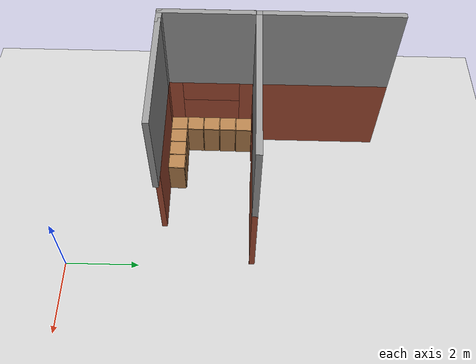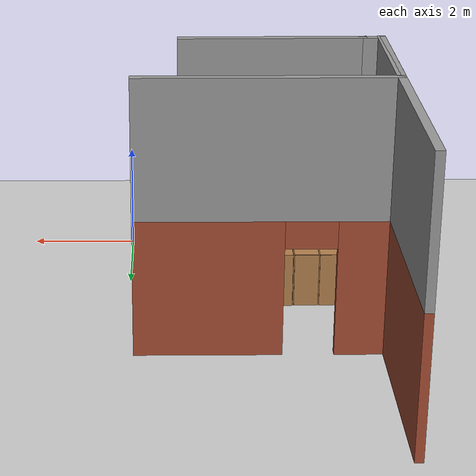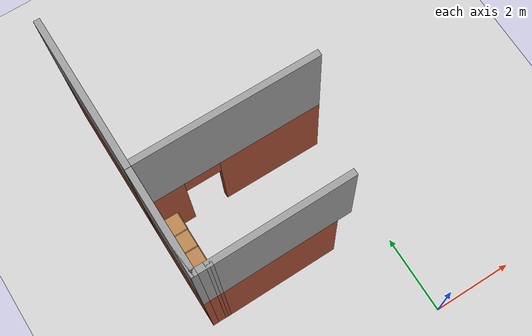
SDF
<sdf version="1.7">
 <world name="default">
  <model name="ground_plane">
   <static>1</static>
   <link name="link">
    <collision name="collision">
     <geometry><plane><normal>0 0 1</normal><size>100 100</size></plane></geometry>
     <surface><friction><ode><mu>100</mu><mu2>50</mu2></ode></friction></surface>
    </collision>
    <visual name="visual">
     <cast_shadows>0</cast_shadows>
     <geometry><plane><normal>0 0 1</normal><size>100 100</size></plane></geometry>
     <material>
      <script><uri>file://media/materials/scripts/gazebo.material</uri><name>Gazebo/Grey</name></script>
     </material>
    </visual>
   </link>
  </model>
  <model name="ZuHause">
   <pose>0.001955 2.012 0 0 -0 0</pose>
   <link name="Wall_100">
    <collision name="Wall_100_Collision">
     <geometry><box><size>3.75 0.15 2.5</size></box></geometry>
     <pose>0 0 1.25 0 -0 0</pose>
    </collision>
    <visual name="Wall_100_Visual">
     <pose>0 0 1.25 0 -0 0</pose>
     <geometry><box><size>3.75 0.15 2.5</size></box></geometry>
     <material>
      <script><uri>file://media/materials/scripts/gazebo.material</uri><name>Gazebo/Bricks</name></script>
      <ambient>1 1 1 1</ambient>
     </material>
     <meta><layer>0</layer></meta>
    </visual>
    <pose>-4.55586 4.88489 0 0 -0 1.5708</pose>
   </link>
   <link name="Wall_108">
    <collision name="Wall_108_Collision">
     <geometry><box><size>2.5 0.15 2.5</size></box></geometry>
     <pose>0 0 1.25 0 -0 0</pose>
    </collision>
    <visual name="Wall_108_Visual">
     <pose>0 0 1.25 0 -0 0</pose>
     <geometry><box><size>2.5 0.15 2.5</size></box></geometry>
     <material>
      <script><uri>file://media/materials/scripts/gazebo.material</uri><name>Gazebo/Grey</name></script>
      <ambient>1 1 1 1</ambient>
     </material>
     <meta><layer>1</layer></meta>
    </visual>
    <pose>-4.55744 1.75088 2.5 0 -0 -1.5708</pose>
   </link>
   <link name="Wall_109">
    <collision name="Wall_109_Collision">
     <geometry><box><size>0.488554 0.15 2.5</size></box></geometry>
     <pose>0 0 1.25 0 -0 0</pose>
    </collision>
    <visual name="Wall_109_Visual">
     <pose>0 0 1.25 0 -0 0</pose>
     <geometry><box><size>0.488554 0.15 2.5</size></box></geometry>
     <material>
      <script><uri>file://media/materials/scripts/gazebo.material</uri><name>Gazebo/Grey</name></script>
      <ambient>1 1 1 1</ambient>
     </material>
     <meta><layer>1</layer></meta>
    </visual>
    <pose>-4.38819 0.578755 2.5 0 -0 -0.016977</pose>
   </link>
   <link name="Wall_111">
    <collision name="Wall_111_Collision">
     <geometry><box><size>3.37854 0.15 2.5</size></box></geometry>
     <pose>0 0 1.25 0 -0 0</pose>
    </collision>
    <visual name="Wall_111_Visual">
     <pose>0 0 1.25 0 -0 0</pose>
     <geometry><box><size>3.37854 0.15 2.5</size></box></geometry>
     <material>
      <script><uri>file://media/materials/scripts/gazebo.material</uri><name>Gazebo/Grey</name></script>
      <ambient>1 1 1 1</ambient>
     </material>
     <meta><layer>1</layer></meta>
    </visual>
    <pose>-2.60474 0.591186 2.5 0 -0 0.009481</pose>
   </link>
   <link name="Wall_131">
    <collision name="Wall_131_Collision">
     <geometry><box><size>2.65326 0.15 2.5</size></box></geometry>
     <pose>0 0 1.25 0 -0 0</pose>
    </collision>
    <visual name="Wall_131_Visual">
     <pose>0 0 1.25 0 -0 0</pose>
     <geometry><box><size>2.65326 0.15 2.5</size></box></geometry>
     <material>
      <script><uri>file://media/materials/scripts/gazebo.material</uri><name>Gazebo/Grey</name></script>
      <ambient>1 1 1 1</ambient>
     </material>
     <meta><layer>1</layer></meta>
    </visual>
    <pose>-4.55665 1.83326 2.5 0 -0 1.57017</pose>
   </link>
   <link name="Wall_132">
    <collision name="Wall_132_Collision">
     <geometry><box><size>4.5 0.15 2.5</size></box></geometry>
     <pose>0 0 1.25 0 -0 0</pose>
    </collision>
    <visual name="Wall_132_Visual">
     <pose>0 0 1.25 0 -0 0</pose>
     <geometry><box><size>4.5 0.15 2.5</size></box></geometry>
     <material>
      <script><uri>file://media/materials/scripts/gazebo.material</uri><name>Gazebo/Grey</name></script>
      <ambient>1 1 1 1</ambient>
     </material>
     <meta><layer>1</layer></meta>
    </visual>
    <pose>-2.38086 3.08489 2.5 0 -0 0</pose>
   </link>
   <link name="Wall_134">
    <collision name="Wall_134_Collision">
     <geometry><box><size>3.75 0.15 2.5</size></box></geometry>
     <pose>0 0 1.25 0 -0 0</pose>
    </collision>
    <visual name="Wall_134_Visual">
     <pose>0 0 1.25 0 -0 0</pose>
     <geometry><box><size>3.75 0.15 2.5</size></box></geometry>
     <material>
      <script><uri>file://media/materials/scripts/gazebo.material</uri><name>Gazebo/Grey</name></script>
      <ambient>1 1 1 1</ambient>
     </material>
     <meta><layer>1</layer></meta>
    </visual>
    <pose>-4.55586 4.88489 2.5 0 -0 1.5708</pose>
   </link>
   <link name="Wall_15">
    <collision name="Wall_15_Collision">
     <geometry><box><size>3.03069 0.15 2.5</size></box></geometry>
     <pose>0 0 1.25 0 -0 0</pose>
    </collision>
    <visual name="Wall_15_Visual">
     <pose>0 0 1.25 0 -0 0</pose>
     <geometry><box><size>3.03069 0.15 2.5</size></box></geometry>
     <material>
      <script><uri>file://media/materials/scripts/gazebo.material</uri><name>Gazebo/Bricks</name></script>
      <ambient>1 1 1 1</ambient>
     </material>
     <meta><layer>0</layer></meta>
    </visual>
    <pose>-2.77867 0.591186 0 0 -0 0.010626</pose>
   </link>
   <link name="Wall_3">
    <collision name="Wall_3_Collision">
     <geometry><box><size>2.5 0.15 2.5</size></box></geometry>
     <pose>0 0 1.25 0 -0 0</pose>
    </collision>
    <visual name="Wall_3_Visual">
     <pose>0 0 1.25 0 -0 0</pose>
     <geometry><box><size>2.5 0.15 2.5</size></box></geometry>
     <material>
      <script><uri>file://media/materials/scripts/gazebo.material</uri><name>Gazebo/Bricks</name></script>
      <ambient>1 1 1 1</ambient>
     </material>
     <meta><layer>0</layer></meta>
    </visual>
    <pose>-4.55744 1.75088 0 0 -0 -1.5708</pose>
   </link>
   <link name="Wall_4">
    <collision name="Wall_4_Collision">
     <geometry><box><size>0.4887 0.15 2.5</size></box></geometry>
     <pose>0 0 1.25 0 -0 0</pose>
    </collision>
    <visual name="Wall_4_Visual">
     <pose>0 0 1.25 0 -0 0</pose>
     <geometry><box><size>0.4887 0.15 2.5</size></box></geometry>
     <material>
      <script><uri>file://media/materials/scripts/gazebo.material</uri><name>Gazebo/Bricks</name></script>
      <ambient>1 1 1 1</ambient>
     </material>
     <meta><layer>0</layer></meta>
    </visual>
    <pose>-4.38819 0.578755 0 0 -0 -0.016977</pose>
   </link>
   <link name="Wall_96">
    <pose>-4.55665 1.83326 0 0 -0 1.57017</pose>
    <visual name="Wall_96_Visual_0">
     <pose>-1.06402 0 1.25 0 -0 0</pose>
     <geometry><box><size>0.525212 0.15 2.5</size></box></geometry>
     <material>
      <script><uri>file://media/materials/scripts/gazebo.material</uri><name>Gazebo/Bricks</name></script>
      <ambient>1 1 1 1</ambient>
     </material>
     <meta><layer>0</layer></meta>
    </visual>
    <collision name="Wall_96_Collision_0">
     <geometry><box><size>0.525212 0.15 2.5</size></box></geometry>
     <pose>-1.06402 0 1.25 0 -0 0</pose>
    </collision>
    <visual name="Wall_96_Visual_1">
     <pose>0.262606 0 0.4 0 -0 0</pose>
     <geometry><box><size>2.12805 0.15 0.8</size></box></geometry>
     <material>
      <script><uri>file://media/materials/scripts/gazebo.material</uri><name>Gazebo/Bricks</name></script>
      <ambient>1 1 1 1</ambient>
     </material>
     <meta><layer>0</layer></meta>
    </visual>
    <collision name="Wall_96_Collision_1">
     <geometry><box><size>2.12805 0.15 0.8</size></box></geometry>
     <pose>0.262606 0 0.4 0 -0 0</pose>
    </collision>
    <visual name="Wall_96_Visual_2">
     <pose>1.06261 0 1.65 0 -0 0</pose>
     <geometry><box><size>0.528047 0.15 1.7</size></box></geometry>
     <material>
      <script><uri>file://media/materials/scripts/gazebo.material</uri><name>Gazebo/Bricks</name></script>
      <ambient>1 1 1 1</ambient>
     </material>
     <meta><layer>0</layer></meta>
    </visual>
    <collision name="Wall_96_Collision_2">
     <geometry><box><size>0.528047 0.15 1.7</size></box></geometry>
     <pose>1.06261 0 1.65 0 -0 0</pose>
    </collision>
    <visual name="Wall_96_Visual_3">
     <pose>-0.001418 0 2.15 0 -0 0</pose>
     <geometry><box><size>1.6 0.15 0.7</size></box></geometry>
     <material>
      <script><uri>file://media/materials/scripts/gazebo.material</uri><name>Gazebo/Bricks</name></script>
      <ambient>1 1 1 1</ambient>
     </material>
     <meta><layer>0</layer></meta>
    </visual>
    <collision name="Wall_96_Collision_3">
     <geometry><box><size>1.6 0.15 0.7</size></box></geometry>
     <pose>-0.001418 0 2.15 0 -0 0</pose>
    </collision>
   </link>
   <link name="Wall_97">
    <pose>-2.38086 3.08489 0 0 -0 0</pose>
    <visual name="Wall_97_Visual_0">
     <pose>-1.74782 0 1.25 0 -0 0</pose>
     <geometry><box><size>1.00437 0.15 2.5</size></box></geometry>
     <material>
      <script><uri>file://media/materials/scripts/gazebo.material</uri><name>Gazebo/Bricks</name></script>
      <ambient>1 1 1 1</ambient>
     </material>
     <meta><layer>0</layer></meta>
    </visual>
    <collision name="Wall_97_Collision_0">
     <geometry><box><size>1.00437 0.15 2.5</size></box></geometry>
     <pose>-1.74782 0 1.25 0 -0 0</pose>
    </collision>
    <visual name="Wall_97_Visual_1">
     <pose>0.952183 0 1.25 0 -0 0</pose>
     <geometry><box><size>2.59563 0.15 2.5</size></box></geometry>
     <material>
      <script><uri>file://media/materials/scripts/gazebo.material</uri><name>Gazebo/Bricks</name></script>
      <ambient>1 1 1 1</ambient>
     </material>
     <meta><layer>0</layer></meta>
    </visual>
    <collision name="Wall_97_Collision_1">
     <geometry><box><size>2.59563 0.15 2.5</size></box></geometry>
     <pose>0.952183 0 1.25 0 -0 0</pose>
    </collision>
    <visual name="Wall_97_Visual_2">
     <pose>-0.795633 0 2.25 0 -0 0</pose>
     <geometry><box><size>0.9 0.15 0.5</size></box></geometry>
     <material>
      <script><uri>file://media/materials/scripts/gazebo.material</uri><name>Gazebo/Bricks</name></script>
      <ambient>1 1 1 1</ambient>
     </material>
     <meta><layer>0</layer></meta>
    </visual>
    <collision name="Wall_97_Collision_2">
     <geometry><box><size>0.9 0.15 0.5</size></box></geometry>
     <pose>-0.795633 0 2.25 0 -0 0</pose>
    </collision>
   </link>
   <static>1</static>
  </model>
  <model name="cabinet_2">
   <static>1</static>
   <link name="cabinet_bottom_plate">
    <inertial>
     <pose>0 0 -1 0 -0 0</pose>
     <inertia><ixx>2.05</ixx><ixy>0</ixy><ixz>0</ixz><iyy>2.05</iyy><iyz>0</iyz><izz>2.05</izz></inertia>
     <mass>25</mass>
    </inertial>
    <collision name="cabinet_bottom_plate_geom">
     <pose>0 0 0.01 0 -0 0</pose>
     <geometry><box><size>0.45 0.45 0.02</size></box></geometry>
    </collision>
    <visual name="cabinet_bottom_plate_geom_visual">
     <pose>0 0 0.01 0 -0 0</pose>
     <geometry><box><size>0.45 0.45 0.02</size></box></geometry>
     <material>
      <script><uri>file://media/materials/scripts/gazebo.material</uri><name>Gazebo/Wood</name></script>
     </material>
    </visual>
    <collision name="cabinet_bottom_plate_geom_cabinet_back_plate">
     <pose>0.235 0 0.51 0 -0 0</pose>
     <geometry><box><size>0.02 0.45 1.02</size></box></geometry>
    </collision>
    <visual name="cabinet_bottom_plate_geom_cabinet_back_plate_visual">
     <pose>0.235 0 0.51 0 -0 0</pose>
     <geometry><box><size>0.02 0.45 1.02</size></box></geometry>
     <material>
      <script><uri>file://media/materials/scripts/gazebo.material</uri><name>Gazebo/Wood</name></script>
     </material>
    </visual>
    <collision name="cabinet_bottom_plate_geom_cabinet_left_plate">
     <pose>0 0.235 0.51 0 -0 0</pose>
     <geometry><box><size>0.45 0.02 1.02</size></box></geometry>
    </collision>
    <visual name="cabinet_bottom_plate_geom_cabinet_left_plate_visual">
     <pose>0 0.235 0.51 0 -0 0</pose>
     <geometry><box><size>0.45 0.02 1.02</size></box></geometry>
     <material>
      <script><uri>file://media/materials/scripts/gazebo.material</uri><name>Gazebo/Wood</name></script>
     </material>
    </visual>
    <collision name="cabinet_bottom_plate_geom_cabinet_middle_plate">
     <pose>0 0 0.51 0 -0 0</pose>
     <geometry><box><size>0.45 0.45 0.02</size></box></geometry>
    </collision>
    <visual name="cabinet_bottom_plate_geom_cabinet_middle_plate_visual">
     <pose>0 0 0.51 0 -0 0</pose>
     <geometry><box><size>0.45 0.45 0.02</size></box></geometry>
     <material>
      <script><uri>file://media/materials/scripts/gazebo.material</uri><name>Gazebo/Wood</name></script>
     </material>
    </visual>
    <collision name="cabinet_bottom_plate_geom_cabinet_right_plate">
     <pose>0 -0.235 0.51 0 -0 0</pose>
     <geometry><box><size>0.45 0.02 1.02</size></box></geometry>
    </collision>
    <visual name="cabinet_bottom_plate_geom_cabinet_right_plate_visual">
     <pose>0 -0.235 0.51 0 -0 0</pose>
     <geometry><box><size>0.45 0.02 1.02</size></box></geometry>
     <material>
      <script><uri>file://media/materials/scripts/gazebo.material</uri><name>Gazebo/Wood</name></script>
     </material>
    </visual>
    <collision name="cabinet_bottom_plate_geom_cabinet_top_plate">
     <pose>0 0 1.01 0 -0 0</pose>
     <geometry><box><size>0.45 0.45 0.02</size></box></geometry>
    </collision>
    <visual name="cabinet_bottom_plate_geom_cabinet_top_plate_visual">
     <pose>0 0 1.01 0 -0 0</pose>
     <geometry><box><size>0.45 0.45 0.02</size></box></geometry>
     <material>
      <script><uri>file://media/materials/scripts/gazebo.material</uri><name>Gazebo/Wood</name></script>
     </material>
    </visual>
   </link>
   <pose>-2.82479 2.9087 0 0 -0 0</pose>
  </model>
  <model name="cabinet_3">
   <static>1</static>
   <link name="cabinet_bottom_plate">
    <inertial>
     <pose>0 0 -1 0 -0 0</pose>
     <inertia><ixx>2.05</ixx><ixy>0</ixy><ixz>0</ixz><iyy>2.05</iyy><iyz>0</iyz><izz>2.05</izz></inertia>
     <mass>25</mass>
    </inertial>
    <collision name="cabinet_bottom_plate_geom">
     <pose>0 0 0.01 0 -0 0</pose>
     <geometry><box><size>0.45 0.45 0.02</size></box></geometry>
    </collision>
    <visual name="cabinet_bottom_plate_geom_visual">
     <pose>0 0 0.01 0 -0 0</pose>
     <geometry><box><size>0.45 0.45 0.02</size></box></geometry>
     <material>
      <script><uri>file://media/materials/scripts/gazebo.material</uri><name>Gazebo/Wood</name></script>
     </material>
    </visual>
    <collision name="cabinet_bottom_plate_geom_cabinet_back_plate">
     <pose>0.235 0 0.51 0 -0 0</pose>
     <geometry><box><size>0.02 0.45 1.02</size></box></geometry>
    </collision>
    <visual name="cabinet_bottom_plate_geom_cabinet_back_plate_visual">
     <pose>0.235 0 0.51 0 -0 0</pose>
     <geometry><box><size>0.02 0.45 1.02</size></box></geometry>
     <material>
      <script><uri>file://media/materials/scripts/gazebo.material</uri><name>Gazebo/Wood</name></script>
     </material>
    </visual>
    <collision name="cabinet_bottom_plate_geom_cabinet_left_plate">
     <pose>0 0.235 0.51 0 -0 0</pose>
     <geometry><box><size>0.45 0.02 1.02</size></box></geometry>
    </collision>
    <visual name="cabinet_bottom_plate_geom_cabinet_left_plate_visual">
     <pose>0 0.235 0.51 0 -0 0</pose>
     <geometry><box><size>0.45 0.02 1.02</size></box></geometry>
     <material>
      <script><uri>file://media/materials/scripts/gazebo.material</uri><name>Gazebo/Wood</name></script>
     </material>
    </visual>
    <collision name="cabinet_bottom_plate_geom_cabinet_middle_plate">
     <pose>0 0 0.51 0 -0 0</pose>
     <geometry><box><size>0.45 0.45 0.02</size></box></geometry>
    </collision>
    <visual name="cabinet_bottom_plate_geom_cabinet_middle_plate_visual">
     <pose>0 0 0.51 0 -0 0</pose>
     <geometry><box><size>0.45 0.45 0.02</size></box></geometry>
     <material>
      <script><uri>file://media/materials/scripts/gazebo.material</uri><name>Gazebo/Wood</name></script>
     </material>
    </visual>
    <collision name="cabinet_bottom_plate_geom_cabinet_right_plate">
     <pose>0 -0.235 0.51 0 -0 0</pose>
     <geometry><box><size>0.45 0.02 1.02</size></box></geometry>
    </collision>
    <visual name="cabinet_bottom_plate_geom_cabinet_right_plate_visual">
     <pose>0 -0.235 0.51 0 -0 0</pose>
     <geometry><box><size>0.45 0.02 1.02</size></box></geometry>
     <material>
      <script><uri>file://media/materials/scripts/gazebo.material</uri><name>Gazebo/Wood</name></script>
     </material>
    </visual>
    <collision name="cabinet_bottom_plate_geom_cabinet_top_plate">
     <pose>0 0 1.01 0 -0 0</pose>
     <geometry><box><size>0.45 0.45 0.02</size></box></geometry>
    </collision>
    <visual name="cabinet_bottom_plate_geom_cabinet_top_plate_visual">
     <pose>0 0 1.01 0 -0 0</pose>
     <geometry><box><size>0.45 0.45 0.02</size></box></geometry>
     <material>
      <script><uri>file://media/materials/scripts/gazebo.material</uri><name>Gazebo/Wood</name></script>
     </material>
    </visual>
   </link>
   <pose>-3.30215 2.90241 0 0 -0 0</pose>
  </model>
  <model name="cabinet_4">
   <static>1</static>
   <link name="cabinet_bottom_plate">
    <inertial>
     <pose>0 0 -1 0 -0 0</pose>
     <inertia><ixx>2.05</ixx><ixy>0</ixy><ixz>0</ixz><iyy>2.05</iyy><iyz>0</iyz><izz>2.05</izz></inertia>
     <mass>25</mass>
    </inertial>
    <collision name="cabinet_bottom_plate_geom">
     <pose>0 0 0.01 0 -0 0</pose>
     <geometry><box><size>0.45 0.45 0.02</size></box></geometry>
    </collision>
    <visual name="cabinet_bottom_plate_geom_visual">
     <pose>0 0 0.01 0 -0 0</pose>
     <geometry><box><size>0.45 0.45 0.02</size></box></geometry>
     <material>
      <script><uri>file://media/materials/scripts/gazebo.material</uri><name>Gazebo/Wood</name></script>
     </material>
    </visual>
    <collision name="cabinet_bottom_plate_geom_cabinet_back_plate">
     <pose>0.235 0 0.51 0 -0 0</pose>
     <geometry><box><size>0.02 0.45 1.02</size></box></geometry>
    </collision>
    <visual name="cabinet_bottom_plate_geom_cabinet_back_plate_visual">
     <pose>0.235 0 0.51 0 -0 0</pose>
     <geometry><box><size>0.02 0.45 1.02</size></box></geometry>
     <material>
      <script><uri>file://media/materials/scripts/gazebo.material</uri><name>Gazebo/Wood</name></script>
     </material>
    </visual>
    <collision name="cabinet_bottom_plate_geom_cabinet_left_plate">
     <pose>0 0.235 0.51 0 -0 0</pose>
     <geometry><box><size>0.45 0.02 1.02</size></box></geometry>
    </collision>
    <visual name="cabinet_bottom_plate_geom_cabinet_left_plate_visual">
     <pose>0 0.235 0.51 0 -0 0</pose>
     <geometry><box><size>0.45 0.02 1.02</size></box></geometry>
     <material>
      <script><uri>file://media/materials/scripts/gazebo.material</uri><name>Gazebo/Wood</name></script>
     </material>
    </visual>
    <collision name="cabinet_bottom_plate_geom_cabinet_middle_plate">
     <pose>0 0 0.51 0 -0 0</pose>
     <geometry><box><size>0.45 0.45 0.02</size></box></geometry>
    </collision>
    <visual name="cabinet_bottom_plate_geom_cabinet_middle_plate_visual">
     <pose>0 0 0.51 0 -0 0</pose>
     <geometry><box><size>0.45 0.45 0.02</size></box></geometry>
     <material>
      <script><uri>file://media/materials/scripts/gazebo.material</uri><name>Gazebo/Wood</name></script>
     </material>
    </visual>
    <collision name="cabinet_bottom_plate_geom_cabinet_right_plate">
     <pose>0 -0.235 0.51 0 -0 0</pose>
     <geometry><box><size>0.45 0.02 1.02</size></box></geometry>
    </collision>
    <visual name="cabinet_bottom_plate_geom_cabinet_right_plate_visual">
     <pose>0 -0.235 0.51 0 -0 0</pose>
     <geometry><box><size>0.45 0.02 1.02</size></box></geometry>
     <material>
      <script><uri>file://media/materials/scripts/gazebo.material</uri><name>Gazebo/Wood</name></script>
     </material>
    </visual>
    <collision name="cabinet_bottom_plate_geom_cabinet_top_plate">
     <pose>0 0 1.01 0 -0 0</pose>
     <geometry><box><size>0.45 0.45 0.02</size></box></geometry>
    </collision>
    <visual name="cabinet_bottom_plate_geom_cabinet_top_plate_visual">
     <pose>0 0 1.01 0 -0 0</pose>
     <geometry><box><size>0.45 0.45 0.02</size></box></geometry>
     <material>
      <script><uri>file://media/materials/scripts/gazebo.material</uri><name>Gazebo/Wood</name></script>
     </material>
    </visual>
   </link>
   <pose>-3.77495 2.89402 0 0 -0 0</pose>
  </model>
  <model name="cabinet_5">
   <static>1</static>
   <link name="cabinet_bottom_plate">
    <inertial>
     <pose>0 0 -1 0 -0 0</pose>
     <inertia><ixx>2.05</ixx><ixy>0</ixy><ixz>0</ixz><iyy>2.05</iyy><iyz>0</iyz><izz>2.05</izz></inertia>
     <mass>25</mass>
    </inertial>
    <collision name="cabinet_bottom_plate_geom">
     <pose>0 0 0.01 0 -0 0</pose>
     <geometry><box><size>0.45 0.45 0.02</size></box></geometry>
    </collision>
    <visual name="cabinet_bottom_plate_geom_visual">
     <pose>0 0 0.01 0 -0 0</pose>
     <geometry><box><size>0.45 0.45 0.02</size></box></geometry>
     <material>
      <script><uri>file://media/materials/scripts/gazebo.material</uri><name>Gazebo/Wood</name></script>
     </material>
    </visual>
    <collision name="cabinet_bottom_plate_geom_cabinet_back_plate">
     <pose>0.235 0 0.51 0 -0 0</pose>
     <geometry><box><size>0.02 0.45 1.02</size></box></geometry>
    </collision>
    <visual name="cabinet_bottom_plate_geom_cabinet_back_plate_visual">
     <pose>0.235 0 0.51 0 -0 0</pose>
     <geometry><box><size>0.02 0.45 1.02</size></box></geometry>
     <material>
      <script><uri>file://media/materials/scripts/gazebo.material</uri><name>Gazebo/Wood</name></script>
     </material>
    </visual>
    <collision name="cabinet_bottom_plate_geom_cabinet_left_plate">
     <pose>0 0.235 0.51 0 -0 0</pose>
     <geometry><box><size>0.45 0.02 1.02</size></box></geometry>
    </collision>
    <visual name="cabinet_bottom_plate_geom_cabinet_left_plate_visual">
     <pose>0 0.235 0.51 0 -0 0</pose>
     <geometry><box><size>0.45 0.02 1.02</size></box></geometry>
     <material>
      <script><uri>file://media/materials/scripts/gazebo.material</uri><name>Gazebo/Wood</name></script>
     </material>
    </visual>
    <collision name="cabinet_bottom_plate_geom_cabinet_middle_plate">
     <pose>0 0 0.51 0 -0 0</pose>
     <geometry><box><size>0.45 0.45 0.02</size></box></geometry>
    </collision>
    <visual name="cabinet_bottom_plate_geom_cabinet_middle_plate_visual">
     <pose>0 0 0.51 0 -0 0</pose>
     <geometry><box><size>0.45 0.45 0.02</size></box></geometry>
     <material>
      <script><uri>file://media/materials/scripts/gazebo.material</uri><name>Gazebo/Wood</name></script>
     </material>
    </visual>
    <collision name="cabinet_bottom_plate_geom_cabinet_right_plate">
     <pose>0 -0.235 0.51 0 -0 0</pose>
     <geometry><box><size>0.45 0.02 1.02</size></box></geometry>
    </collision>
    <visual name="cabinet_bottom_plate_geom_cabinet_right_plate_visual">
     <pose>0 -0.235 0.51 0 -0 0</pose>
     <geometry><box><size>0.45 0.02 1.02</size></box></geometry>
     <material>
      <script><uri>file://media/materials/scripts/gazebo.material</uri><name>Gazebo/Wood</name></script>
     </material>
    </visual>
    <collision name="cabinet_bottom_plate_geom_cabinet_top_plate">
     <pose>0 0 1.01 0 -0 0</pose>
     <geometry><box><size>0.45 0.45 0.02</size></box></geometry>
    </collision>
    <visual name="cabinet_bottom_plate_geom_cabinet_top_plate_visual">
     <pose>0 0 1.01 0 -0 0</pose>
     <geometry><box><size>0.45 0.45 0.02</size></box></geometry>
     <material>
      <script><uri>file://media/materials/scripts/gazebo.material</uri><name>Gazebo/Wood</name></script>
     </material>
    </visual>
   </link>
   <pose>-4.23864 2.8918 0 0 -0 0</pose>
  </model>
  <model name="cabinet_6">
   <static>1</static>
   <link name="cabinet_bottom_plate">
    <inertial>
     <pose>0 0 -1 0 -0 0</pose>
     <inertia><ixx>2.05</ixx><ixy>0</ixy><ixz>0</ixz><iyy>2.05</iyy><iyz>0</iyz><izz>2.05</izz></inertia>
     <mass>25</mass>
    </inertial>
    <collision name="cabinet_bottom_plate_geom">
     <pose>0 0 0.01 0 -0 0</pose>
     <geometry><box><size>0.45 0.45 0.02</size></box></geometry>
    </collision>
    <visual name="cabinet_bottom_plate_geom_visual">
     <pose>0 0 0.01 0 -0 0</pose>
     <geometry><box><size>0.45 0.45 0.02</size></box></geometry>
     <material>
      <script><uri>file://media/materials/scripts/gazebo.material</uri><name>Gazebo/Wood</name></script>
     </material>
    </visual>
    <collision name="cabinet_bottom_plate_geom_cabinet_back_plate">
     <pose>0.235 0 0.51 0 -0 0</pose>
     <geometry><box><size>0.02 0.45 1.02</size></box></geometry>
    </collision>
    <visual name="cabinet_bottom_plate_geom_cabinet_back_plate_visual">
     <pose>0.235 0 0.51 0 -0 0</pose>
     <geometry><box><size>0.02 0.45 1.02</size></box></geometry>
     <material>
      <script><uri>file://media/materials/scripts/gazebo.material</uri><name>Gazebo/Wood</name></script>
     </material>
    </visual>
    <collision name="cabinet_bottom_plate_geom_cabinet_left_plate">
     <pose>0 0.235 0.51 0 -0 0</pose>
     <geometry><box><size>0.45 0.02 1.02</size></box></geometry>
    </collision>
    <visual name="cabinet_bottom_plate_geom_cabinet_left_plate_visual">
     <pose>0 0.235 0.51 0 -0 0</pose>
     <geometry><box><size>0.45 0.02 1.02</size></box></geometry>
     <material>
      <script><uri>file://media/materials/scripts/gazebo.material</uri><name>Gazebo/Wood</name></script>
     </material>
    </visual>
    <collision name="cabinet_bottom_plate_geom_cabinet_middle_plate">
     <pose>0 0 0.51 0 -0 0</pose>
     <geometry><box><size>0.45 0.45 0.02</size></box></geometry>
    </collision>
    <visual name="cabinet_bottom_plate_geom_cabinet_middle_plate_visual">
     <pose>0 0 0.51 0 -0 0</pose>
     <geometry><box><size>0.45 0.45 0.02</size></box></geometry>
     <material>
      <script><uri>file://media/materials/scripts/gazebo.material</uri><name>Gazebo/Wood</name></script>
     </material>
    </visual>
    <collision name="cabinet_bottom_plate_geom_cabinet_right_plate">
     <pose>0 -0.235 0.51 0 -0 0</pose>
     <geometry><box><size>0.45 0.02 1.02</size></box></geometry>
    </collision>
    <visual name="cabinet_bottom_plate_geom_cabinet_right_plate_visual">
     <pose>0 -0.235 0.51 0 -0 0</pose>
     <geometry><box><size>0.45 0.02 1.02</size></box></geometry>
     <material>
      <script><uri>file://media/materials/scripts/gazebo.material</uri><name>Gazebo/Wood</name></script>
     </material>
    </visual>
    <collision name="cabinet_bottom_plate_geom_cabinet_top_plate">
     <pose>0 0 1.01 0 -0 0</pose>
     <geometry><box><size>0.45 0.45 0.02</size></box></geometry>
    </collision>
    <visual name="cabinet_bottom_plate_geom_cabinet_top_plate_visual">
     <pose>0 0 1.01 0 -0 0</pose>
     <geometry><box><size>0.45 0.45 0.02</size></box></geometry>
     <material>
      <script><uri>file://media/materials/scripts/gazebo.material</uri><name>Gazebo/Wood</name></script>
     </material>
    </visual>
   </link>
   <pose>-4.24297 3.37001 0 0 -0 0</pose>
  </model>
  <model name="cabinet_7">
   <static>1</static>
   <link name="cabinet_bottom_plate">
    <inertial>
     <pose>0 0 -1 0 -0 0</pose>
     <inertia><ixx>2.05</ixx><ixy>0</ixy><ixz>0</ixz><iyy>2.05</iyy><iyz>0</iyz><izz>2.05</izz></inertia>
     <mass>25</mass>
    </inertial>
    <collision name="cabinet_bottom_plate_geom">
     <pose>0 0 0.01 0 -0 0</pose>
     <geometry><box><size>0.45 0.45 0.02</size></box></geometry>
    </collision>
    <visual name="cabinet_bottom_plate_geom_visual">
     <pose>0 0 0.01 0 -0 0</pose>
     <geometry><box><size>0.45 0.45 0.02</size></box></geometry>
     <material>
      <script><uri>file://media/materials/scripts/gazebo.material</uri><name>Gazebo/Wood</name></script>
     </material>
    </visual>
    <collision name="cabinet_bottom_plate_geom_cabinet_back_plate">
     <pose>0.235 0 0.51 0 -0 0</pose>
     <geometry><box><size>0.02 0.45 1.02</size></box></geometry>
    </collision>
    <visual name="cabinet_bottom_plate_geom_cabinet_back_plate_visual">
     <pose>0.235 0 0.51 0 -0 0</pose>
     <geometry><box><size>0.02 0.45 1.02</size></box></geometry>
     <material>
      <script><uri>file://media/materials/scripts/gazebo.material</uri><name>Gazebo/Wood</name></script>
     </material>
    </visual>
    <collision name="cabinet_bottom_plate_geom_cabinet_left_plate">
     <pose>0 0.235 0.51 0 -0 0</pose>
     <geometry><box><size>0.45 0.02 1.02</size></box></geometry>
    </collision>
    <visual name="cabinet_bottom_plate_geom_cabinet_left_plate_visual">
     <pose>0 0.235 0.51 0 -0 0</pose>
     <geometry><box><size>0.45 0.02 1.02</size></box></geometry>
     <material>
      <script><uri>file://media/materials/scripts/gazebo.material</uri><name>Gazebo/Wood</name></script>
     </material>
    </visual>
    <collision name="cabinet_bottom_plate_geom_cabinet_middle_plate">
     <pose>0 0 0.51 0 -0 0</pose>
     <geometry><box><size>0.45 0.45 0.02</size></box></geometry>
    </collision>
    <visual name="cabinet_bottom_plate_geom_cabinet_middle_plate_visual">
     <pose>0 0 0.51 0 -0 0</pose>
     <geometry><box><size>0.45 0.45 0.02</size></box></geometry>
     <material>
      <script><uri>file://media/materials/scripts/gazebo.material</uri><name>Gazebo/Wood</name></script>
     </material>
    </visual>
    <collision name="cabinet_bottom_plate_geom_cabinet_right_plate">
     <pose>0 -0.235 0.51 0 -0 0</pose>
     <geometry><box><size>0.45 0.02 1.02</size></box></geometry>
    </collision>
    <visual name="cabinet_bottom_plate_geom_cabinet_right_plate_visual">
     <pose>0 -0.235 0.51 0 -0 0</pose>
     <geometry><box><size>0.45 0.02 1.02</size></box></geometry>
     <material>
      <script><uri>file://media/materials/scripts/gazebo.material</uri><name>Gazebo/Wood</name></script>
     </material>
    </visual>
    <collision name="cabinet_bottom_plate_geom_cabinet_top_plate">
     <pose>0 0 1.01 0 -0 0</pose>
     <geometry><box><size>0.45 0.45 0.02</size></box></geometry>
    </collision>
    <visual name="cabinet_bottom_plate_geom_cabinet_top_plate_visual">
     <pose>0 0 1.01 0 -0 0</pose>
     <geometry><box><size>0.45 0.45 0.02</size></box></geometry>
     <material>
      <script><uri>file://media/materials/scripts/gazebo.material</uri><name>Gazebo/Wood</name></script>
     </material>
    </visual>
   </link>
   <pose>-4.24166 3.84545 0 0 -0 0</pose>
  </model>
  <model name="cabinet_8">
   <static>1</static>
   <link name="cabinet_bottom_plate">
    <inertial>
     <pose>0 0 -1 0 -0 0</pose>
     <inertia><ixx>2.05</ixx><ixy>0</ixy><ixz>0</ixz><iyy>2.05</iyy><iyz>0</iyz><izz>2.05</izz></inertia>
     <mass>25</mass>
    </inertial>
    <collision name="cabinet_bottom_plate_geom">
     <pose>0 0 0.01 0 -0 0</pose>
     <geometry><box><size>0.45 0.45 0.02</size></box></geometry>
    </collision>
    <visual name="cabinet_bottom_plate_geom_visual">
     <pose>0 0 0.01 0 -0 0</pose>
     <geometry><box><size>0.45 0.45 0.02</size></box></geometry>
     <material>
      <script><uri>file://media/materials/scripts/gazebo.material</uri><name>Gazebo/Wood</name></script>
     </material>
    </visual>
    <collision name="cabinet_bottom_plate_geom_cabinet_back_plate">
     <pose>0.235 0 0.51 0 -0 0</pose>
     <geometry><box><size>0.02 0.45 1.02</size></box></geometry>
    </collision>
    <visual name="cabinet_bottom_plate_geom_cabinet_back_plate_visual">
     <pose>0.235 0 0.51 0 -0 0</pose>
     <geometry><box><size>0.02 0.45 1.02</size></box></geometry>
     <material>
      <script><uri>file://media/materials/scripts/gazebo.material</uri><name>Gazebo/Wood</name></script>
     </material>
    </visual>
    <collision name="cabinet_bottom_plate_geom_cabinet_left_plate">
     <pose>0 0.235 0.51 0 -0 0</pose>
     <geometry><box><size>0.45 0.02 1.02</size></box></geometry>
    </collision>
    <visual name="cabinet_bottom_plate_geom_cabinet_left_plate_visual">
     <pose>0 0.235 0.51 0 -0 0</pose>
     <geometry><box><size>0.45 0.02 1.02</size></box></geometry>
     <material>
      <script><uri>file://media/materials/scripts/gazebo.material</uri><name>Gazebo/Wood</name></script>
     </material>
    </visual>
    <collision name="cabinet_bottom_plate_geom_cabinet_middle_plate">
     <pose>0 0 0.51 0 -0 0</pose>
     <geometry><box><size>0.45 0.45 0.02</size></box></geometry>
    </collision>
    <visual name="cabinet_bottom_plate_geom_cabinet_middle_plate_visual">
     <pose>0 0 0.51 0 -0 0</pose>
     <geometry><box><size>0.45 0.45 0.02</size></box></geometry>
     <material>
      <script><uri>file://media/materials/scripts/gazebo.material</uri><name>Gazebo/Wood</name></script>
     </material>
    </visual>
    <collision name="cabinet_bottom_plate_geom_cabinet_right_plate">
     <pose>0 -0.235 0.51 0 -0 0</pose>
     <geometry><box><size>0.45 0.02 1.02</size></box></geometry>
    </collision>
    <visual name="cabinet_bottom_plate_geom_cabinet_right_plate_visual">
     <pose>0 -0.235 0.51 0 -0 0</pose>
     <geometry><box><size>0.45 0.02 1.02</size></box></geometry>
     <material>
      <script><uri>file://media/materials/scripts/gazebo.material</uri><name>Gazebo/Wood</name></script>
     </material>
    </visual>
    <collision name="cabinet_bottom_plate_geom_cabinet_top_plate">
     <pose>0 0 1.01 0 -0 0</pose>
     <geometry><box><size>0.45 0.45 0.02</size></box></geometry>
    </collision>
    <visual name="cabinet_bottom_plate_geom_cabinet_top_plate_visual">
     <pose>0 0 1.01 0 -0 0</pose>
     <geometry><box><size>0.45 0.45 0.02</size></box></geometry>
     <material>
      <script><uri>file://media/materials/scripts/gazebo.material</uri><name>Gazebo/Wood</name></script>
     </material>
    </visual>
   </link>
   <pose>-4.24036 4.32309 0 0 -0 0</pose>
  </model>
  <model name="cabinet_9">
   <static>1</static>
   <link name="cabinet_bottom_plate">
    <inertial>
     <pose>0 0 -1 0 -0 0</pose>
     <inertia><ixx>2.05</ixx><ixy>0</ixy><ixz>0</ixz><iyy>2.05</iyy><iyz>0</iyz><izz>2.05</izz></inertia>
     <mass>25</mass>
    </inertial>
    <collision name="cabinet_bottom_plate_geom">
     <pose>0 0 0.01 0 -0 0</pose>
     <geometry><box><size>0.45 0.45 0.02</size></box></geometry>
    </collision>
    <visual name="cabinet_bottom_plate_geom_visual">
     <pose>0 0 0.01 0 -0 0</pose>
     <geometry><box><size>0.45 0.45 0.02</size></box></geometry>
     <material>
      <script><uri>file://media/materials/scripts/gazebo.material</uri><name>Gazebo/Wood</name></script>
     </material>
    </visual>
    <collision name="cabinet_bottom_plate_geom_cabinet_back_plate">
     <pose>0.235 0 0.51 0 -0 0</pose>
     <geometry><box><size>0.02 0.45 1.02</size></box></geometry>
    </collision>
    <visual name="cabinet_bottom_plate_geom_cabinet_back_plate_visual">
     <pose>0.235 0 0.51 0 -0 0</pose>
     <geometry><box><size>0.02 0.45 1.02</size></box></geometry>
     <material>
      <script><uri>file://media/materials/scripts/gazebo.material</uri><name>Gazebo/Wood</name></script>
     </material>
    </visual>
    <collision name="cabinet_bottom_plate_geom_cabinet_left_plate">
     <pose>0 0.235 0.51 0 -0 0</pose>
     <geometry><box><size>0.45 0.02 1.02</size></box></geometry>
    </collision>
    <visual name="cabinet_bottom_plate_geom_cabinet_left_plate_visual">
     <pose>0 0.235 0.51 0 -0 0</pose>
     <geometry><box><size>0.45 0.02 1.02</size></box></geometry>
     <material>
      <script><uri>file://media/materials/scripts/gazebo.material</uri><name>Gazebo/Wood</name></script>
     </material>
    </visual>
    <collision name="cabinet_bottom_plate_geom_cabinet_middle_plate">
     <pose>0 0 0.51 0 -0 0</pose>
     <geometry><box><size>0.45 0.45 0.02</size></box></geometry>
    </collision>
    <visual name="cabinet_bottom_plate_geom_cabinet_middle_plate_visual">
     <pose>0 0 0.51 0 -0 0</pose>
     <geometry><box><size>0.45 0.45 0.02</size></box></geometry>
     <material>
      <script><uri>file://media/materials/scripts/gazebo.material</uri><name>Gazebo/Wood</name></script>
     </material>
    </visual>
    <collision name="cabinet_bottom_plate_geom_cabinet_right_plate">
     <pose>0 -0.235 0.51 0 -0 0</pose>
     <geometry><box><size>0.45 0.02 1.02</size></box></geometry>
    </collision>
    <visual name="cabinet_bottom_plate_geom_cabinet_right_plate_visual">
     <pose>0 -0.235 0.51 0 -0 0</pose>
     <geometry><box><size>0.45 0.02 1.02</size></box></geometry>
     <material>
      <script><uri>file://media/materials/scripts/gazebo.material</uri><name>Gazebo/Wood</name></script>
     </material>
    </visual>
    <collision name="cabinet_bottom_plate_geom_cabinet_top_plate">
     <pose>0 0 1.01 0 -0 0</pose>
     <geometry><box><size>0.45 0.45 0.02</size></box></geometry>
    </collision>
    <visual name="cabinet_bottom_plate_geom_cabinet_top_plate_visual">
     <pose>0 0 1.01 0 -0 0</pose>
     <geometry><box><size>0.45 0.45 0.02</size></box></geometry>
     <material>
      <script><uri>file://media/materials/scripts/gazebo.material</uri><name>Gazebo/Wood</name></script>
     </material>
    </visual>
   </link>
   <pose>-4.23324 4.79877 0 0 -0 0</pose>
  </model>
 </world>
</sdf>
